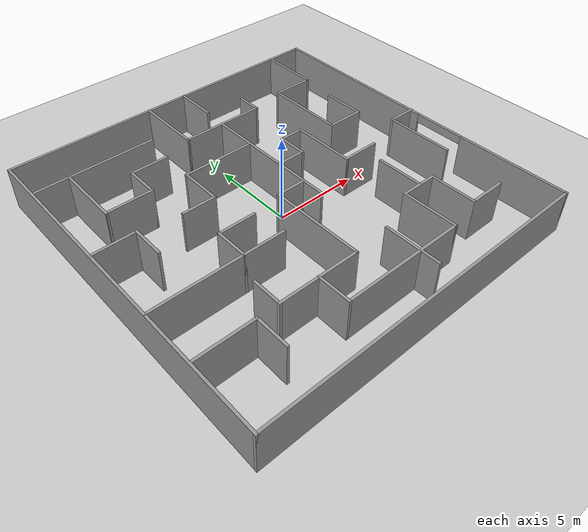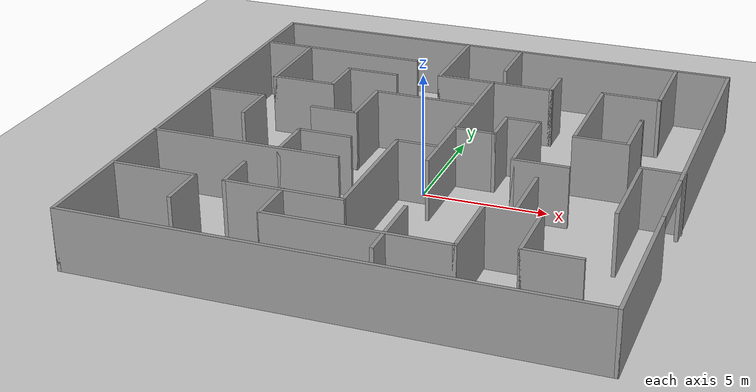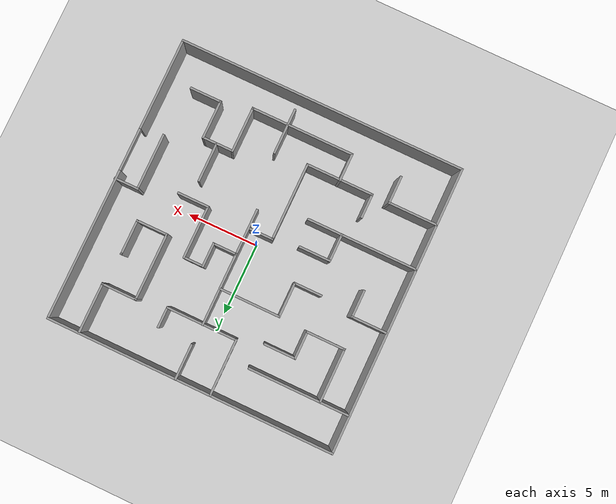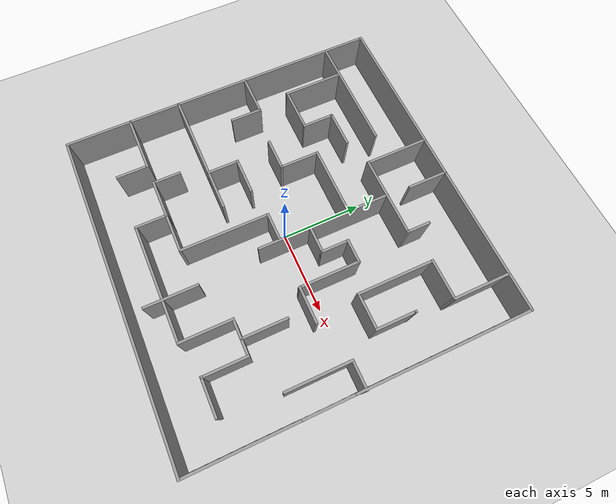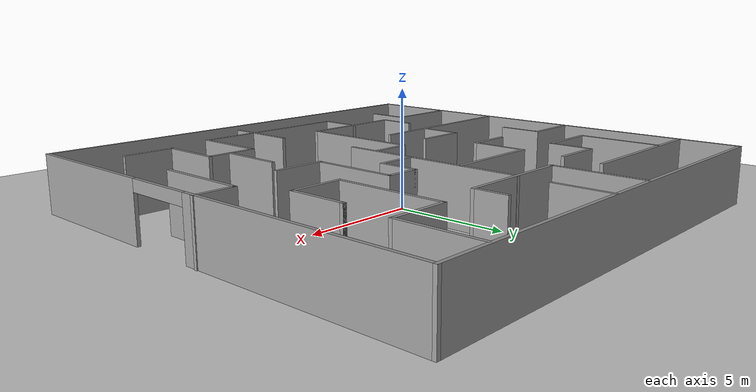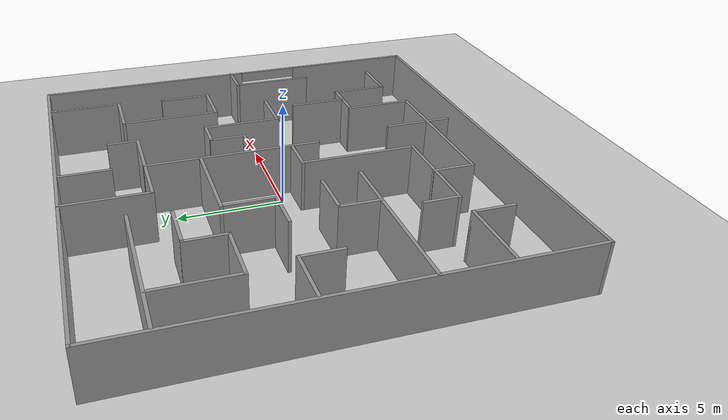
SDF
<sdf version="1.7">
 <world name="default">
  <light name="sun" type="directional">
   <pose>0 0 10 0 -0 0</pose>
   <diffuse>0.8 0.8 0.8 1</diffuse>
   <specular>0.2 0.2 0.2 1</specular>
   <attenuation>
    <range>1000</range>
    <constant>0.9</constant>
    <linear>0.01</linear>
    <quadratic>0.001</quadratic>
   </attenuation>
   <direction>-0.5 0.1 -0.9</direction>
   <spot><inner_angle>0</inner_angle><outer_angle>0</outer_angle><falloff>0</falloff></spot>
  </light>
  <model name="ground_plane">
   <static>1</static>
   <link name="link">
    <collision name="collision">
     <geometry><plane><normal>0 0 1</normal><size>100 100</size></plane></geometry>
     <surface>
      <contact><collide_bitmask>65535</collide_bitmask></contact>
      <friction><ode><mu>100</mu><mu2>50</mu2></ode></friction>
     </surface>
    </collision>
    <visual name="visual">
     <cast_shadows>0</cast_shadows>
     <geometry><plane><normal>0 0 1</normal><size>100 100</size></plane></geometry>
     <material>
      <script><uri>file://media/materials/scripts/gazebo.material</uri><name>Gazebo/Grey</name></script>
     </material>
    </visual>
   </link>
  </model>
  <gravity>0 0 -9.8</gravity>
  <magnetic_field>6e-06 2.3e-05 -4.2e-05</magnetic_field>
  <atmosphere type="adiabatic"/>
  <physics type="ode">
   <max_step_size>0.001</max_step_size>
   <real_time_factor>1</real_time_factor>
   <real_time_update_rate>1000</real_time_update_rate>
  </physics>
  <scene><ambient>0.4 0.4 0.4 1</ambient><background>0.7 0.7 0.7 1</background><shadows>1</shadows></scene>
  <spherical_coordinates>
   <surface_model>EARTH_WGS84</surface_model>
   <latitude_deg>0</latitude_deg>
   <longitude_deg>0</longitude_deg>
   <elevation>0</elevation>
   <heading_deg>0</heading_deg>
  </spherical_coordinates>
  <model name="Untitled">
   <pose>0.019997 0 0 0 -0 0</pose>
   <link name="Wall_11">
    <collision name="Wall_11_Collision">
     <geometry><box><size>7.041 0.15 2.5</size></box></geometry>
     <pose>0 0 1.25 0 -0 0</pose>
    </collision>
    <visual name="Wall_11_Visual">
     <pose>0 0 1.25 0 -0 0</pose>
     <geometry><box><size>7.041 0.15 2.5</size></box></geometry>
     <material>
      <script><uri>file://media/materials/scripts/gazebo.material</uri><name>Gazebo/Grey</name></script>
      <ambient>1 1 1 1</ambient>
     </material>
     <meta><layer>0</layer></meta>
    </visual>
    <pose>-6.4655 7.407 0 0 -0 0</pose>
   </link>
   <link name="Wall_16">
    <collision name="Wall_16_Collision">
     <geometry><box><size>3.75 0.15 2.5</size></box></geometry>
     <pose>0 0 1.25 0 -0 0</pose>
    </collision>
    <visual name="Wall_16_Visual">
     <pose>0 0 1.25 0 -0 0</pose>
     <geometry><box><size>3.75 0.15 2.5</size></box></geometry>
     <material>
      <script><uri>file://media/materials/scripts/gazebo.material</uri><name>Gazebo/Grey</name></script>
      <ambient>1 1 1 1</ambient>
     </material>
     <meta><layer>0</layer></meta>
    </visual>
    <pose>-7.97624 5.54073 0 0 -0 -1.5708</pose>
   </link>
   <link name="Wall_17">
    <collision name="Wall_17_Collision">
     <geometry><box><size>2.75 0.15 2.5</size></box></geometry>
     <pose>0 0 1.25 0 -0 0</pose>
    </collision>
    <visual name="Wall_17_Visual">
     <pose>0 0 1.25 0 -0 0</pose>
     <geometry><box><size>2.75 0.15 2.5</size></box></geometry>
     <material>
      <script><uri>file://media/materials/scripts/gazebo.material</uri><name>Gazebo/Grey</name></script>
      <ambient>1 1 1 1</ambient>
     </material>
     <meta><layer>0</layer></meta>
    </visual>
    <pose>-6.67624 3.74073 0 0 -0 0</pose>
   </link>
   <link name="Wall_18">
    <collision name="Wall_18_Collision">
     <geometry><box><size>2 0.15 2.5</size></box></geometry>
     <pose>0 0 1.25 0 -0 0</pose>
    </collision>
    <visual name="Wall_18_Visual">
     <pose>0 0 1.25 0 -0 0</pose>
     <geometry><box><size>2 0.15 2.5</size></box></geometry>
     <material>
      <script><uri>file://media/materials/scripts/gazebo.material</uri><name>Gazebo/Grey</name></script>
      <ambient>1 1 1 1</ambient>
     </material>
     <meta><layer>0</layer></meta>
    </visual>
    <pose>-5.37624 4.66573 0 0 -0 1.5708</pose>
   </link>
   <link name="Wall_19">
    <collision name="Wall_19_Collision">
     <geometry><box><size>2.25 0.15 2.5</size></box></geometry>
     <pose>0 0 1.25 0 -0 0</pose>
    </collision>
    <visual name="Wall_19_Visual">
     <pose>0 0 1.25 0 -0 0</pose>
     <geometry><box><size>2.25 0.15 2.5</size></box></geometry>
     <material>
      <script><uri>file://media/materials/scripts/gazebo.material</uri><name>Gazebo/Grey</name></script>
      <ambient>1 1 1 1</ambient>
     </material>
     <meta><layer>0</layer></meta>
    </visual>
    <pose>-4.32624 5.59073 0 0 -0 0</pose>
   </link>
   <link name="Wall_21">
    <collision name="Wall_21_Collision">
     <geometry><box><size>2.5 0.15 2.5</size></box></geometry>
     <pose>0 0 1.25 0 -0 0</pose>
    </collision>
    <visual name="Wall_21_Visual">
     <pose>0 0 1.25 0 -0 0</pose>
     <geometry><box><size>2.5 0.15 2.5</size></box></geometry>
     <material>
      <script><uri>file://media/materials/scripts/gazebo.material</uri><name>Gazebo/Grey</name></script>
      <ambient>1 1 1 1</ambient>
     </material>
     <meta><layer>0</layer></meta>
    </visual>
    <pose>-8.73673 1.65858 0 0 -0 0</pose>
   </link>
   <link name="Wall_22">
    <collision name="Wall_22_Collision">
     <geometry><box><size>1.97066 0.15 2.5</size></box></geometry>
     <pose>0 0 1.25 0 -0 0</pose>
    </collision>
    <visual name="Wall_22_Visual">
     <pose>0 0 1.25 0 -0 0</pose>
     <geometry><box><size>1.97066 0.15 2.5</size></box></geometry>
     <material>
      <script><uri>file://media/materials/scripts/gazebo.material</uri><name>Gazebo/Grey</name></script>
      <ambient>1 1 1 1</ambient>
     </material>
     <meta><layer>0</layer></meta>
    </visual>
    <pose>-7.56173 0.748248 0 0 -0 -1.5708</pose>
   </link>
   <link name="Wall_25">
    <collision name="Wall_25_Collision">
     <geometry><box><size>7.75 0.15 2.5</size></box></geometry>
     <pose>0 0 1.25 0 -0 0</pose>
    </collision>
    <visual name="Wall_25_Visual">
     <pose>0 0 1.25 0 -0 0</pose>
     <geometry><box><size>7.75 0.15 2.5</size></box></geometry>
     <material>
      <script><uri>file://media/materials/scripts/gazebo.material</uri><name>Gazebo/Grey</name></script>
      <ambient>1 1 1 1</ambient>
     </material>
     <meta><layer>0</layer></meta>
    </visual>
    <pose>-6.20531 -2.83308 0 0 -0 0</pose>
   </link>
   <link name="Wall_27">
    <collision name="Wall_27_Collision">
     <geometry><box><size>2 0.15 2.5</size></box></geometry>
     <pose>0 0 1.25 0 -0 0</pose>
    </collision>
    <visual name="Wall_27_Visual">
     <pose>0 0 1.25 0 -0 0</pose>
     <geometry><box><size>2 0.15 2.5</size></box></geometry>
     <material>
      <script><uri>file://media/materials/scripts/gazebo.material</uri><name>Gazebo/Grey</name></script>
      <ambient>1 1 1 1</ambient>
     </material>
     <meta><layer>0</layer></meta>
    </visual>
    <pose>-4.76504 -1.90808 0 0 -0 1.5708</pose>
   </link>
   <link name="Wall_28">
    <collision name="Wall_28_Collision">
     <geometry><box><size>2.25 0.15 2.5</size></box></geometry>
     <pose>0 0 1.25 0 -0 0</pose>
    </collision>
    <visual name="Wall_28_Visual">
     <pose>0 0 1.25 0 -0 0</pose>
     <geometry><box><size>2.25 0.15 2.5</size></box></geometry>
     <material>
      <script><uri>file://media/materials/scripts/gazebo.material</uri><name>Gazebo/Grey</name></script>
      <ambient>1 1 1 1</ambient>
     </material>
     <meta><layer>0</layer></meta>
    </visual>
    <pose>-3.71504 -0.983079 0 0 -0 0</pose>
   </link>
   <link name="Wall_3">
    <collision name="Wall_3_Collision">
     <geometry><box><size>20.15 0.15 2.5</size></box></geometry>
     <pose>0 0 1.25 0 -0 0</pose>
    </collision>
    <visual name="Wall_3_Visual">
     <pose>0 0 1.25 0 -0 0</pose>
     <geometry><box><size>20.15 0.15 2.5</size></box></geometry>
     <material>
      <script><uri>file://media/materials/scripts/gazebo.material</uri><name>Gazebo/Grey</name></script>
      <ambient>1 1 1 1</ambient>
     </material>
     <meta><layer>0</layer></meta>
    </visual>
    <pose>-10.02 0 0 0 -0 1.5708</pose>
   </link>
   <link name="Wall_30">
    <collision name="Wall_30_Collision">
     <geometry><box><size>3.5 0.15 2.5</size></box></geometry>
     <pose>0 0 1.25 0 -0 0</pose>
    </collision>
    <visual name="Wall_30_Visual">
     <pose>0 0 1.25 0 -0 0</pose>
     <geometry><box><size>3.5 0.15 2.5</size></box></geometry>
     <material>
      <script><uri>file://media/materials/scripts/gazebo.material</uri><name>Gazebo/Grey</name></script>
      <ambient>1 1 1 1</ambient>
     </material>
     <meta><layer>0</layer></meta>
    </visual>
    <pose>7.77417 8.21828 0 0 -0 -1.5708</pose>
   </link>
   <link name="Wall_31">
    <collision name="Wall_31_Collision">
     <geometry><box><size>2.5 0.15 2.5</size></box></geometry>
     <pose>0 0 1.25 0 -0 0</pose>
    </collision>
    <visual name="Wall_31_Visual">
     <pose>0 0 1.25 0 -0 0</pose>
     <geometry><box><size>2.5 0.15 2.5</size></box></geometry>
     <material>
      <script><uri>file://media/materials/scripts/gazebo.material</uri><name>Gazebo/Grey</name></script>
      <ambient>1 1 1 1</ambient>
     </material>
     <meta><layer>0</layer></meta>
    </visual>
    <pose>6.59917 6.54329 0 0 -0 3.14159</pose>
   </link>
   <link name="Wall_34">
    <collision name="Wall_34_Collision">
     <geometry><box><size>4.75 0.15 2.5</size></box></geometry>
     <pose>0 0 1.25 0 -0 0</pose>
    </collision>
    <visual name="Wall_34_Visual">
     <pose>0 0 1.25 0 -0 0</pose>
     <geometry><box><size>4.75 0.15 2.5</size></box></geometry>
     <material>
      <script><uri>file://media/materials/scripts/gazebo.material</uri><name>Gazebo/Grey</name></script>
      <ambient>1 1 1 1</ambient>
     </material>
     <meta><layer>0</layer></meta>
    </visual>
    <pose>5.42417 4.24329 0 0 -0 -1.5708</pose>
   </link>
   <link name="Wall_35">
    <collision name="Wall_35_Collision">
     <geometry><box><size>2.25 0.15 2.5</size></box></geometry>
     <pose>0 0 1.25 0 -0 0</pose>
    </collision>
    <visual name="Wall_35_Visual">
     <pose>0 0 1.25 0 -0 0</pose>
     <geometry><box><size>2.25 0.15 2.5</size></box></geometry>
     <material>
      <script><uri>file://media/materials/scripts/gazebo.material</uri><name>Gazebo/Grey</name></script>
      <ambient>1 1 1 1</ambient>
     </material>
     <meta><layer>0</layer></meta>
    </visual>
    <pose>6.47417 1.94328 0 0 -0 0</pose>
   </link>
   <link name="Wall_36">
    <collision name="Wall_36_Collision">
     <geometry><box><size>2.5 0.15 2.5</size></box></geometry>
     <pose>0 0 1.25 0 -0 0</pose>
    </collision>
    <visual name="Wall_36_Visual">
     <pose>0 0 1.25 0 -0 0</pose>
     <geometry><box><size>2.5 0.15 2.5</size></box></geometry>
     <material>
      <script><uri>file://media/materials/scripts/gazebo.material</uri><name>Gazebo/Grey</name></script>
      <ambient>1 1 1 1</ambient>
     </material>
     <meta><layer>0</layer></meta>
    </visual>
    <pose>7.52417 3.11829 0 0 -0 1.5708</pose>
   </link>
   <link name="Wall_37">
    <collision name="Wall_37_Collision">
     <geometry><box><size>0.16 0.15 2.5</size></box></geometry>
     <pose>0 0 1.25 0 -0 0</pose>
    </collision>
    <visual name="Wall_37_Visual">
     <pose>0 0 1.25 0 -0 0</pose>
     <geometry><box><size>0.16 0.15 2.5</size></box></geometry>
     <material>
      <script><uri>file://media/materials/scripts/gazebo.material</uri><name>Gazebo/Grey</name></script>
      <ambient>1 1 1 1</ambient>
     </material>
     <meta><layer>0</layer></meta>
    </visual>
    <pose>7.52917 4.29329 0 0 -0 0</pose>
   </link>
   <link name="Wall_39">
    <collision name="Wall_39_Collision">
     <geometry><box><size>4 0.15 2.5</size></box></geometry>
     <pose>0 0 1.25 0 -0 0</pose>
    </collision>
    <visual name="Wall_39_Visual">
     <pose>0 0 1.25 0 -0 0</pose>
     <geometry><box><size>4 0.15 2.5</size></box></geometry>
     <material>
      <script><uri>file://media/materials/scripts/gazebo.material</uri><name>Gazebo/Grey</name></script>
      <ambient>1 1 1 1</ambient>
     </material>
     <meta><layer>0</layer></meta>
    </visual>
    <pose>-1.48988 8.06186 0 0 -0 -1.5708</pose>
   </link>
   <link name="Wall_40">
    <collision name="Wall_40_Collision">
     <geometry><box><size>5 0.15 2.5</size></box></geometry>
     <pose>0 0 1.25 0 -0 0</pose>
    </collision>
    <visual name="Wall_40_Visual">
     <pose>0 0 1.25 0 -0 0</pose>
     <geometry><box><size>5 0.15 2.5</size></box></geometry>
     <material>
      <script><uri>file://media/materials/scripts/gazebo.material</uri><name>Gazebo/Grey</name></script>
      <ambient>1 1 1 1</ambient>
     </material>
     <meta><layer>0</layer></meta>
    </visual>
    <pose>0.935124 6.13686 0 0 -0 0</pose>
   </link>
   <link name="Wall_41">
    <collision name="Wall_41_Collision">
     <geometry><box><size>1.5 0.15 2.5</size></box></geometry>
     <pose>0 0 1.25 0 -0 0</pose>
    </collision>
    <visual name="Wall_41_Visual">
     <pose>0 0 1.25 0 -0 0</pose>
     <geometry><box><size>1.5 0.15 2.5</size></box></geometry>
     <material>
      <script><uri>file://media/materials/scripts/gazebo.material</uri><name>Gazebo/Grey</name></script>
      <ambient>1 1 1 1</ambient>
     </material>
     <meta><layer>0</layer></meta>
    </visual>
    <pose>3.36012 6.81186 0 0 -0 1.5708</pose>
   </link>
   <link name="Wall_43">
    <collision name="Wall_43_Collision">
     <geometry><box><size>8.25 0.15 2.5</size></box></geometry>
     <pose>0 0 1.25 0 -0 0</pose>
    </collision>
    <visual name="Wall_43_Visual">
     <pose>0 0 1.25 0 -0 0</pose>
     <geometry><box><size>8.25 0.15 2.5</size></box></geometry>
     <material>
      <script><uri>file://media/materials/scripts/gazebo.material</uri><name>Gazebo/Grey</name></script>
      <ambient>1 1 1 1</ambient>
     </material>
     <meta><layer>0</layer></meta>
    </visual>
    <pose>0.849529 2.10024 0 0 -0 -1.5708</pose>
   </link>
   <link name="Wall_45">
    <collision name="Wall_45_Collision">
     <geometry><box><size>1.75 0.15 2.5</size></box></geometry>
     <pose>0 0 1.25 0 -0 0</pose>
    </collision>
    <visual name="Wall_45_Visual">
     <pose>0 0 1.25 0 -0 0</pose>
     <geometry><box><size>1.75 0.15 2.5</size></box></geometry>
     <material>
      <script><uri>file://media/materials/scripts/gazebo.material</uri><name>Gazebo/Grey</name></script>
      <ambient>1 1 1 1</ambient>
     </material>
     <meta><layer>0</layer></meta>
    </visual>
    <pose>1.64953 1.1907 0 0 -0 0</pose>
   </link>
   <link name="Wall_46">
    <collision name="Wall_46_Collision">
     <geometry><box><size>1.75 0.15 2.5</size></box></geometry>
     <pose>0 0 1.25 0 -0 0</pose>
    </collision>
    <visual name="Wall_46_Visual">
     <pose>0 0 1.25 0 -0 0</pose>
     <geometry><box><size>1.75 0.15 2.5</size></box></geometry>
     <material>
      <script><uri>file://media/materials/scripts/gazebo.material</uri><name>Gazebo/Grey</name></script>
      <ambient>1 1 1 1</ambient>
     </material>
     <meta><layer>0</layer></meta>
    </visual>
    <pose>2.44953 1.9907 0 0 -0 1.5708</pose>
   </link>
   <link name="Wall_47">
    <collision name="Wall_47_Collision">
     <geometry><box><size>1.5 0.15 2.5</size></box></geometry>
     <pose>0 0 1.25 0 -0 0</pose>
    </collision>
    <visual name="Wall_47_Visual">
     <pose>0 0 1.25 0 -0 0</pose>
     <geometry><box><size>1.5 0.15 2.5</size></box></geometry>
     <material>
      <script><uri>file://media/materials/scripts/gazebo.material</uri><name>Gazebo/Grey</name></script>
      <ambient>1 1 1 1</ambient>
     </material>
     <meta><layer>0</layer></meta>
    </visual>
    <pose>3.12453 2.7907 0 0 -0 0</pose>
   </link>
   <link name="Wall_48">
    <collision name="Wall_48_Collision">
     <geometry><box><size>3.75 0.15 2.5</size></box></geometry>
     <pose>0 0 1.25 0 -0 0</pose>
    </collision>
    <visual name="Wall_48_Visual">
     <pose>0 0 1.25 0 -0 0</pose>
     <geometry><box><size>3.75 0.15 2.5</size></box></geometry>
     <material>
      <script><uri>file://media/materials/scripts/gazebo.material</uri><name>Gazebo/Grey</name></script>
      <ambient>1 1 1 1</ambient>
     </material>
     <meta><layer>0</layer></meta>
    </visual>
    <pose>3.79953 0.990698 0 0 -0 -1.5708</pose>
   </link>
   <link name="Wall_49">
    <collision name="Wall_49_Collision">
     <geometry><box><size>2.25 0.15 2.5</size></box></geometry>
     <pose>0 0 1.25 0 -0 0</pose>
    </collision>
    <visual name="Wall_49_Visual">
     <pose>0 0 1.25 0 -0 0</pose>
     <geometry><box><size>2.25 0.15 2.5</size></box></geometry>
     <material>
      <script><uri>file://media/materials/scripts/gazebo.material</uri><name>Gazebo/Grey</name></script>
      <ambient>1 1 1 1</ambient>
     </material>
     <meta><layer>0</layer></meta>
    </visual>
    <pose>4.84953 -0.809302 0 0 -0 0</pose>
   </link>
   <link name="Wall_5">
    <pose>9.98 0 0 0 -0 1.5708</pose>
    <visual name="Wall_5_Visual_0">
     <pose>-6.80409 0 1.25 0 -0 0</pose>
     <geometry><box><size>6.54182 0.15 2.5</size></box></geometry>
     <material>
      <script><uri>file://media/materials/scripts/gazebo.material</uri><name>Gazebo/Grey</name></script>
      <ambient>1 1 1 1</ambient>
     </material>
     <meta><layer>0</layer></meta>
    </visual>
    <collision name="Wall_5_Collision_0">
     <geometry><box><size>6.54182 0.15 2.5</size></box></geometry>
     <pose>-6.80409 0 1.25 0 -0 0</pose>
    </collision>
    <visual name="Wall_5_Visual_1">
     <pose>4.77091 0 1.25 0 -0 0</pose>
     <geometry><box><size>10.6082 0.15 2.5</size></box></geometry>
     <material>
      <script><uri>file://media/materials/scripts/gazebo.material</uri><name>Gazebo/Grey</name></script>
      <ambient>1 1 1 1</ambient>
     </material>
     <meta><layer>0</layer></meta>
    </visual>
    <collision name="Wall_5_Collision_1">
     <geometry><box><size>10.6082 0.15 2.5</size></box></geometry>
     <pose>4.77091 0 1.25 0 -0 0</pose>
    </collision>
    <visual name="Wall_5_Visual_2">
     <pose>-2.03318 0 2.25 0 -0 0</pose>
     <geometry><box><size>3 0.15 0.5</size></box></geometry>
     <material>
      <script><uri>file://media/materials/scripts/gazebo.material</uri><name>Gazebo/Grey</name></script>
      <ambient>1 1 1 1</ambient>
     </material>
     <meta><layer>0</layer></meta>
    </visual>
    <collision name="Wall_5_Collision_2">
     <geometry><box><size>3 0.15 0.5</size></box></geometry>
     <pose>-2.03318 0 2.25 0 -0 0</pose>
    </collision>
   </link>
   <link name="Wall_51">
    <collision name="Wall_51_Collision">
     <geometry><box><size>1.75 0.15 2.5</size></box></geometry>
     <pose>0 0 1.25 0 -0 0</pose>
    </collision>
    <visual name="Wall_51_Visual">
     <pose>0 0 1.25 0 -0 0</pose>
     <geometry><box><size>1.75 0.15 2.5</size></box></geometry>
     <material>
      <script><uri>file://media/materials/scripts/gazebo.material</uri><name>Gazebo/Grey</name></script>
      <ambient>1 1 1 1</ambient>
     </material>
     <meta><layer>0</layer></meta>
    </visual>
    <pose>9.22 0.067783 0 0 -0 3.14159</pose>
   </link>
   <link name="Wall_52">
    <collision name="Wall_52_Collision">
     <geometry><box><size>4 0.15 2.5</size></box></geometry>
     <pose>0 0 1.25 0 -0 0</pose>
    </collision>
    <visual name="Wall_52_Visual">
     <pose>0 0 1.25 0 -0 0</pose>
     <geometry><box><size>4 0.15 2.5</size></box></geometry>
     <material>
      <script><uri>file://media/materials/scripts/gazebo.material</uri><name>Gazebo/Grey</name></script>
      <ambient>1 1 1 1</ambient>
     </material>
     <meta><layer>0</layer></meta>
    </visual>
    <pose>8.42 -1.85722 0 0 -0 -1.5708</pose>
   </link>
   <link name="Wall_54">
    <collision name="Wall_54_Collision">
     <geometry><box><size>1.75 0.15 2.5</size></box></geometry>
     <pose>0 0 1.25 0 -0 0</pose>
    </collision>
    <visual name="Wall_54_Visual">
     <pose>0 0 1.25 0 -0 0</pose>
     <geometry><box><size>1.75 0.15 2.5</size></box></geometry>
     <material>
      <script><uri>file://media/materials/scripts/gazebo.material</uri><name>Gazebo/Grey</name></script>
      <ambient>1 1 1 1</ambient>
     </material>
     <meta><layer>0</layer></meta>
    </visual>
    <pose>-0.044047 -0.680827 0 0 -0 3.14159</pose>
   </link>
   <link name="Wall_55">
    <collision name="Wall_55_Collision">
     <geometry><box><size>5.5 0.15 2.5</size></box></geometry>
     <pose>0 0 1.25 0 -0 0</pose>
    </collision>
    <visual name="Wall_55_Visual">
     <pose>0 0 1.25 0 -0 0</pose>
     <geometry><box><size>5.5 0.15 2.5</size></box></geometry>
     <material>
      <script><uri>file://media/materials/scripts/gazebo.material</uri><name>Gazebo/Grey</name></script>
      <ambient>1 1 1 1</ambient>
     </material>
     <meta><layer>0</layer></meta>
    </visual>
    <pose>-0.844047 -3.35583 0 0 -0 -1.5708</pose>
   </link>
   <link name="Wall_56">
    <collision name="Wall_56_Collision">
     <geometry><box><size>4.75 0.15 2.5</size></box></geometry>
     <pose>0 0 1.25 0 -0 0</pose>
    </collision>
    <visual name="Wall_56_Visual">
     <pose>0 0 1.25 0 -0 0</pose>
     <geometry><box><size>4.75 0.15 2.5</size></box></geometry>
     <material>
      <script><uri>file://media/materials/scripts/gazebo.material</uri><name>Gazebo/Grey</name></script>
      <ambient>1 1 1 1</ambient>
     </material>
     <meta><layer>0</layer></meta>
    </visual>
    <pose>-3.14405 -6.03083 0 0 -0 3.14159</pose>
   </link>
   <link name="Wall_57">
    <collision name="Wall_57_Collision">
     <geometry><box><size>1.75 0.15 2.5</size></box></geometry>
     <pose>0 0 1.25 0 -0 0</pose>
    </collision>
    <visual name="Wall_57_Visual">
     <pose>0 0 1.25 0 -0 0</pose>
     <geometry><box><size>1.75 0.15 2.5</size></box></geometry>
     <material>
      <script><uri>file://media/materials/scripts/gazebo.material</uri><name>Gazebo/Grey</name></script>
      <ambient>1 1 1 1</ambient>
     </material>
     <meta><layer>0</layer></meta>
    </visual>
    <pose>-5.44405 -5.23083 0 0 -0 1.5708</pose>
   </link>
   <link name="Wall_59">
    <collision name="Wall_59_Collision">
     <geometry><box><size>2 0.15 2.5</size></box></geometry>
     <pose>0 0 1.25 0 -0 0</pose>
    </collision>
    <visual name="Wall_59_Visual">
     <pose>0 0 1.25 0 -0 0</pose>
     <geometry><box><size>2 0.15 2.5</size></box></geometry>
     <material>
      <script><uri>file://media/materials/scripts/gazebo.material</uri><name>Gazebo/Grey</name></script>
      <ambient>1 1 1 1</ambient>
     </material>
     <meta><layer>0</layer></meta>
    </visual>
    <pose>-3.17425 -6.93967 0 0 -0 -1.5708</pose>
   </link>
   <link name="Wall_60">
    <collision name="Wall_60_Collision">
     <geometry><box><size>7.25 0.15 2.5</size></box></geometry>
     <pose>0 0 1.25 0 -0 0</pose>
    </collision>
    <visual name="Wall_60_Visual">
     <pose>0 0 1.25 0 -0 0</pose>
     <geometry><box><size>7.25 0.15 2.5</size></box></geometry>
     <material>
      <script><uri>file://media/materials/scripts/gazebo.material</uri><name>Gazebo/Grey</name></script>
      <ambient>1 1 1 1</ambient>
     </material>
     <meta><layer>0</layer></meta>
    </visual>
    <pose>0.375752 -7.86467 0 0 -0 0</pose>
   </link>
   <link name="Wall_61">
    <collision name="Wall_61_Collision">
     <geometry><box><size>3.25 0.15 2.5</size></box></geometry>
     <pose>0 0 1.25 0 -0 0</pose>
    </collision>
    <visual name="Wall_61_Visual">
     <pose>0 0 1.25 0 -0 0</pose>
     <geometry><box><size>3.25 0.15 2.5</size></box></geometry>
     <material>
      <script><uri>file://media/materials/scripts/gazebo.material</uri><name>Gazebo/Grey</name></script>
      <ambient>1 1 1 1</ambient>
     </material>
     <meta><layer>0</layer></meta>
    </visual>
    <pose>3.92575 -6.31467 0 0 -0 1.5708</pose>
   </link>
   <link name="Wall_62">
    <collision name="Wall_62_Collision">
     <geometry><box><size>2.25 0.15 2.5</size></box></geometry>
     <pose>0 0 1.25 0 -0 0</pose>
    </collision>
    <visual name="Wall_62_Visual">
     <pose>0 0 1.25 0 -0 0</pose>
     <geometry><box><size>2.25 0.15 2.5</size></box></geometry>
     <material>
      <script><uri>file://media/materials/scripts/gazebo.material</uri><name>Gazebo/Grey</name></script>
      <ambient>1 1 1 1</ambient>
     </material>
     <meta><layer>0</layer></meta>
    </visual>
    <pose>4.97575 -4.76467 0 0 -0 0</pose>
   </link>
   <link name="Wall_63">
    <collision name="Wall_63_Collision">
     <geometry><box><size>2.75 0.15 2.5</size></box></geometry>
     <pose>0 0 1.25 0 -0 0</pose>
    </collision>
    <visual name="Wall_63_Visual">
     <pose>0 0 1.25 0 -0 0</pose>
     <geometry><box><size>2.75 0.15 2.5</size></box></geometry>
     <material>
      <script><uri>file://media/materials/scripts/gazebo.material</uri><name>Gazebo/Grey</name></script>
      <ambient>1 1 1 1</ambient>
     </material>
     <meta><layer>0</layer></meta>
    </visual>
    <pose>6.02575 -6.06467 0 0 -0 -1.5708</pose>
   </link>
   <link name="Wall_64">
    <collision name="Wall_64_Collision">
     <geometry><box><size>2.25 0.15 2.5</size></box></geometry>
     <pose>0 0 1.25 0 -0 0</pose>
    </collision>
    <visual name="Wall_64_Visual">
     <pose>0 0 1.25 0 -0 0</pose>
     <geometry><box><size>2.25 0.15 2.5</size></box></geometry>
     <material>
      <script><uri>file://media/materials/scripts/gazebo.material</uri><name>Gazebo/Grey</name></script>
      <ambient>1 1 1 1</ambient>
     </material>
     <meta><layer>0</layer></meta>
    </visual>
    <pose>7.07575 -7.36467 0 0 -0 0</pose>
   </link>
   <link name="Wall_66">
    <collision name="Wall_66_Collision">
     <geometry><box><size>3.25 0.15 2.5</size></box></geometry>
     <pose>0 0 1.25 0 -0 0</pose>
    </collision>
    <visual name="Wall_66_Visual">
     <pose>0 0 1.25 0 -0 0</pose>
     <geometry><box><size>3.25 0.15 2.5</size></box></geometry>
     <material>
      <script><uri>file://media/materials/scripts/gazebo.material</uri><name>Gazebo/Grey</name></script>
      <ambient>1 1 1 1</ambient>
     </material>
     <meta><layer>0</layer></meta>
    </visual>
    <pose>1.41099 -7.37752 0 0 -0 -1.5708</pose>
   </link>
   <link name="Wall_68">
    <collision name="Wall_68_Collision">
     <geometry><box><size>2.75 0.15 2.5</size></box></geometry>
     <pose>0 0 1.25 0 -0 0</pose>
    </collision>
    <visual name="Wall_68_Visual">
     <pose>0 0 1.25 0 -0 0</pose>
     <geometry><box><size>2.75 0.15 2.5</size></box></geometry>
     <material>
      <script><uri>file://media/materials/scripts/gazebo.material</uri><name>Gazebo/Grey</name></script>
      <ambient>1 1 1 1</ambient>
     </material>
     <meta><layer>0</layer></meta>
    </visual>
    <pose>5.06046 -3.4046 0 0 -0 1.5708</pose>
   </link>
   <link name="Wall_7">
    <collision name="Wall_7_Collision">
     <geometry><box><size>20.15 0.15 2.5</size></box></geometry>
     <pose>0 0 1.25 0 -0 0</pose>
    </collision>
    <visual name="Wall_7_Visual">
     <pose>0 0 1.25 0 -0 0</pose>
     <geometry><box><size>20.15 0.15 2.5</size></box></geometry>
     <material>
      <script><uri>file://media/materials/scripts/gazebo.material</uri><name>Gazebo/Grey</name></script>
      <ambient>1 1 1 1</ambient>
     </material>
     <meta><layer>0</layer></meta>
    </visual>
    <pose>-0.019997 -10 0 0 -0 0</pose>
   </link>
   <link name="Wall_70">
    <collision name="Wall_70_Collision">
     <geometry><box><size>3.5 0.15 2.5</size></box></geometry>
     <pose>0 0 1.25 0 -0 0</pose>
    </collision>
    <visual name="Wall_70_Visual">
     <pose>0 0 1.25 0 -0 0</pose>
     <geometry><box><size>3.5 0.15 2.5</size></box></geometry>
     <material>
      <script><uri>file://media/materials/scripts/gazebo.material</uri><name>Gazebo/Grey</name></script>
      <ambient>1 1 1 1</ambient>
     </material>
     <meta><layer>0</layer></meta>
    </visual>
    <pose>-8.33031 -6.01467 0 0 -0 0</pose>
   </link>
   <link name="Wall_71">
    <collision name="Wall_71_Collision">
     <geometry><box><size>2 0.15 2.5</size></box></geometry>
     <pose>0 0 1.25 0 -0 0</pose>
    </collision>
    <visual name="Wall_71_Visual">
     <pose>0 0 1.25 0 -0 0</pose>
     <geometry><box><size>2 0.15 2.5</size></box></geometry>
     <material>
      <script><uri>file://media/materials/scripts/gazebo.material</uri><name>Gazebo/Grey</name></script>
      <ambient>1 1 1 1</ambient>
     </material>
     <meta><layer>0</layer></meta>
    </visual>
    <pose>-6.65531 -6.93967 0 0 -0 -1.5708</pose>
   </link>
   <link name="Wall_73">
    <collision name="Wall_73_Collision">
     <geometry><box><size>2.5 0.15 2.5</size></box></geometry>
     <pose>0 0 1.25 0 -0 0</pose>
    </collision>
    <visual name="Wall_73_Visual">
     <pose>0 0 1.25 0 -0 0</pose>
     <geometry><box><size>2.5 0.15 2.5</size></box></geometry>
     <material>
      <script><uri>file://media/materials/scripts/gazebo.material</uri><name>Gazebo/Grey</name></script>
      <ambient>1 1 1 1</ambient>
     </material>
     <meta><layer>0</layer></meta>
    </visual>
    <pose>0.943105 8.81186 0 0 -0 -1.5708</pose>
   </link>
   <link name="Wall_75">
    <collision name="Wall_75_Collision">
     <geometry><box><size>4.25 0.15 2.5</size></box></geometry>
     <pose>0 0 1.25 0 -0 0</pose>
    </collision>
    <visual name="Wall_75_Visual">
     <pose>0 0 1.25 0 -0 0</pose>
     <geometry><box><size>4.25 0.15 2.5</size></box></geometry>
     <material>
      <script><uri>file://media/materials/scripts/gazebo.material</uri><name>Gazebo/Grey</name></script>
      <ambient>1 1 1 1</ambient>
     </material>
     <meta><layer>0</layer></meta>
    </visual>
    <pose>-1.29405 3.62368 0 0 -0 3.14159</pose>
   </link>
   <link name="Wall_76">
    <collision name="Wall_76_Collision">
     <geometry><box><size>2.5 0.15 2.5</size></box></geometry>
     <pose>0 0 1.25 0 -0 0</pose>
    </collision>
    <visual name="Wall_76_Visual">
     <pose>0 0 1.25 0 -0 0</pose>
     <geometry><box><size>2.5 0.15 2.5</size></box></geometry>
     <material>
      <script><uri>file://media/materials/scripts/gazebo.material</uri><name>Gazebo/Grey</name></script>
      <ambient>1 1 1 1</ambient>
     </material>
     <meta><layer>0</layer></meta>
    </visual>
    <pose>-3.34405 2.44868 0 0 -0 -1.5708</pose>
   </link>
   <link name="Wall_77">
    <collision name="Wall_77_Collision">
     <geometry><box><size>2 0.15 2.5</size></box></geometry>
     <pose>0 0 1.25 0 -0 0</pose>
    </collision>
    <visual name="Wall_77_Visual">
     <pose>0 0 1.25 0 -0 0</pose>
     <geometry><box><size>2 0.15 2.5</size></box></geometry>
     <material>
      <script><uri>file://media/materials/scripts/gazebo.material</uri><name>Gazebo/Grey</name></script>
      <ambient>1 1 1 1</ambient>
     </material>
     <meta><layer>0</layer></meta>
    </visual>
    <pose>-4.26905 1.27368 0 0 -0 3.14159</pose>
   </link>
   <link name="Wall_9">
    <collision name="Wall_9_Collision">
     <geometry><box><size>20.15 0.15 2.5</size></box></geometry>
     <pose>0 0 1.25 0 -0 0</pose>
    </collision>
    <visual name="Wall_9_Visual">
     <pose>0 0 1.25 0 -0 0</pose>
     <geometry><box><size>20.15 0.15 2.5</size></box></geometry>
     <material>
      <script><uri>file://media/materials/scripts/gazebo.material</uri><name>Gazebo/Grey</name></script>
      <ambient>1 1 1 1</ambient>
     </material>
     <meta><layer>0</layer></meta>
    </visual>
    <pose>-0.019997 10 0 0 -0 0</pose>
   </link>
   <static>1</static>
  </model>
 </world>
</sdf>
